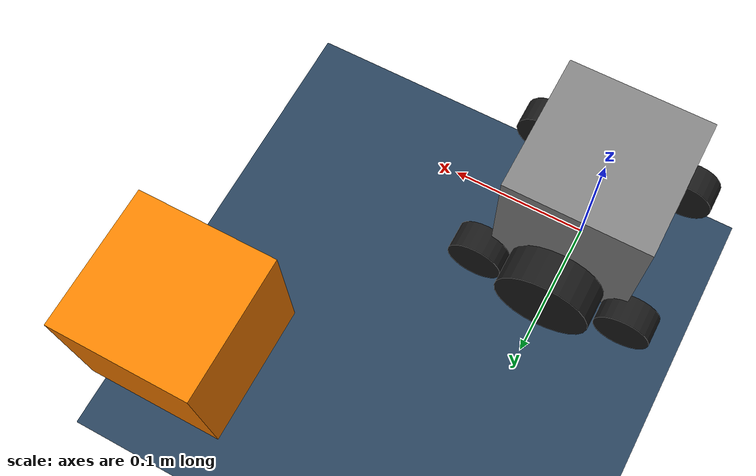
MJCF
<mujoco model="robot scene">
  <compiler angle="radian"/>
  <option timestep="0.0005"/>

  <include file="robots/zima.xml"/>

  <statistic center="0 0 0.1" extent="0.8"/>

  <visual>
    <headlight diffuse="0.6 0.6 0.6" ambient="0.3 0.3 0.3" specular="0 0 0"/>
    <rgba haze="0.15 0.25 0.35 1"/>
    <global azimuth="120" elevation="-20"/>
  </visual>

  <asset>
    <texture type="skybox" builtin="gradient" rgb1="0.8 0.8 0.8" rgb2="0 0 0" width="512" height="3072"/>
    <texture type="2d" name="groundplane" builtin="checker" mark="edge" rgb1="0.2 0.3 0.4" rgb2="0.1 0.2 0.3"
      markrgb="0.8 0.8 0.8" width="300" height="300"/>
    <material name="groundplane" texture="groundplane" texuniform="true" texrepeat="5 5" reflectance="0.2"/>
    <texture type="2d" name="wheel_texture" builtin="checker" mark="edge" rgb1="0.0 0.0 0.0" rgb2="0.2 0.2 0.2"
      markrgb="0.3 0.3 0.3" width="300" height="300"/>
    <material name="wheel_material" texture="wheel_texture" texuniform="true" texrepeat="5 5"/>
  </asset>

  <worldbody>
    <light pos="0 0 3" dir="0 0 -1" directional="true" diffuse="0.8 0.8 0.8" specular="0.2 0.2 0.2"/>
    <geom name="floor" size="0 0 0.05" pos="0 0 -0.1" type="plane" material="groundplane"/>
    <body name="orange_box" pos="0.2 0.2 0.05">
      <freejoint/>
      <inertial pos="0 0 0" mass="0.1" diaginertia="0.00016667 0.00016667 0.00016667"/>
      <geom type="box" size="0.05 0.05 0.05" rgba="1 0.5 0 1"/>
    </body>
  </worldbody>

</mujoco>

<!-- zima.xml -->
<mujoco model="simple_differential_drive">
  <compiler angle="radian"/>

  <default>
    <default class="wheel">
      <geom type="cylinder" size="0.034 0.013" friction="2 0.005 0.0001" contype="1" conaffinity="1" mass="0.032"/>
      <joint type="hinge" frictionloss="0.001" damping="0.01" armature="0.01" limited="false"/>
    </default>
    <default class="idler_wheel">
      <geom type="cylinder" size="0.020 0.010" friction="2 0.005 0.0001" contype="1" conaffinity="1" mass="0.015"/>
      <joint type="hinge" frictionloss="0.001" damping="0.005" armature="0.001" limited="false"/>
    </default>
  </default>

  <worldbody>
    <body name="robot_body" pos="0 0 0.068">
      <joint type="free"/>
      <camera name="front_camera" mode="fixed" pos="0.05 0 0" xyaxes="0 -1 0 0 0 1"/>

      <!-- Main body box -->
      <geom name="body_geom" type="box" size="0.05 0.05 0.05" pos="0 0 0" mass="1.0"/>
      <geom name="camera_indicator" type="box" size="0.002 0.015 0.010" pos="0.052 0 0" rgba="0 0 0 1"/>
      <inertial pos="0 0 0" mass="1.0" diaginertia="0.001 0.001 0.001"/>

      <!-- Left wheel -->
      <body name="wheel_l" pos="0 0.065 -0.035">
        <joint class="wheel" name="wheel_l_throttle" axis="0 1 0"/>
        <geom class="wheel" quat="0.707107 0.707107 0 0" material="wheel_material"/>
      </body>

      <!-- Right wheel -->
      <body name="wheel_r" pos="0 -0.065 -0.035">
        <joint class="wheel" name="wheel_r_throttle" axis="0 1 0"/>
        <geom class="wheel" quat="0.707107 0.707107 0 0" material="wheel_material"/>
      </body>

      <!-- Front left idler wheel -->
      <body name="wheel_fl_idler" pos="0.055 0.055 -0.048">
        <joint class="idler_wheel" name="wheel_fl_idler_joint" axis="0 1 0"/>
        <geom class="idler_wheel" quat="0.707107 0.707107 0 0" material="wheel_material"/>
      </body>

      <!-- Front right idler wheel -->
      <body name="wheel_fr_idler" pos="0.055 -0.055 -0.048">
        <joint class="idler_wheel" name="wheel_fr_idler_joint" axis="0 1 0"/>
        <geom class="idler_wheel" quat="0.707107 0.707107 0 0" material="wheel_material"/>
      </body>

      <!-- Rear left idler wheel -->
      <body name="wheel_bl_idler" pos="-0.055 0.055 -0.048">
        <joint class="idler_wheel" name="wheel_bl_idler_joint" axis="0 1 0"/>
        <geom class="idler_wheel" quat="0.707107 0.707107 0 0" material="wheel_material"/>
      </body>

      <!-- Rear right idler wheel -->
      <body name="wheel_br_idler" pos="-0.055 -0.055 -0.048">
        <joint class="idler_wheel" name="wheel_br_idler_joint" axis="0 1 0"/>
        <geom class="idler_wheel" quat="0.707107 0.707107 0 0" material="wheel_material"/>
      </body>
    </body>
  </worldbody>

  <actuator>
    <velocity kv="100" gear="0.04" forcelimited="true" forcerange="-50 50" name="motor_l_wheel" joint="wheel_l_throttle"/>
    <velocity kv="100" gear="0.04" forcelimited="true" forcerange="-50 50" name="motor_r_wheel" joint="wheel_r_throttle"/>
  </actuator>
</mujoco>
